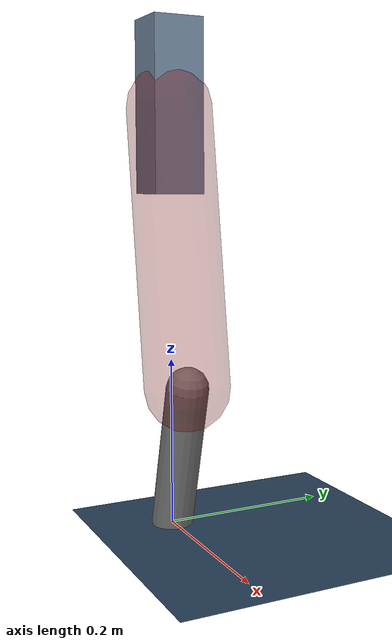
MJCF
<mujoco model="Hopper2D">
	<compiler inertiafromgeom="true" angle="radian" />
	<option timestep="0.001" integrator="implicit" cone="elliptic" solver="Newton" tolerance="1e-10" />

	<default>
		<geom contype="1" conaffinity="1" condim="3" friction="2 0.005 0.0001" solref="0.005 1" />
		<joint limited="true" damping="0.1" />
	</default>

	<asset>
		<texture name="skybox" type="skybox" builtin="gradient" rgb1=".4 .6 .8" rgb2="0 0 0" width="800" height="800" />
		<texture name="grid" type="2d" builtin="checker" rgb1=".1 .2 .3" rgb2=".2 .3 .4" width="300" height="300" mark="edge" markrgb=".2 .3 .4" />
		<material name="ground" texture="grid" texrepeat="1 1" texuniform="true" reflectance="0.1" />
		<material name="leg" rgba="0.5 0.6 0.7 1" />
	</asset>

	<worldbody>

		<geom name="floor" type="plane" size="5 5 0.25" material="ground" />

		<light directional="false" diffuse="0.8 0.8 0.8" specular="0.3 0.3 0.3" pos="0 0 2" dir="0 0 -1" />
		<light mode="targetbodycom" target="base" directional="false" diffuse="0.8 0.8 0.8" specular="0.3 0.3 0.3" pos="0 0 2" dir="0 0 -1" />

		<camera name="fixed" pos="0 -2 1" xyaxes="1 0 0 0 0 1" />
		<camera name="tracking" mode="trackcom" pos="0 -3 1" />

		<body name="root" pos="0 0 0.49614799922417685">
			<joint name="slide_x" type="slide" axis="1 0 0" range="-100 100" />
			<joint name="slide_z" type="slide" axis="0 0 1" range="0 10" />

			<body name="base" pos="0 0 0">
				<geom name="torso" type="box" size="0.03 0.03 0.1" mass="2.085" material="leg" />

				<body name="link1" pos="0 0 0" euler="0 1.4235238042793343 0">
					<joint type="hinge" axis="0 -1 0" pos="0 0 0" name="hinge1" limited="true" range="-3.14 3.14" stiffness="0" damping="0.1" />
					<geom name="thigh" type="capsule" fromto="0 0 0 0.3260388199990574 0 0" size="0.05" rgba="0.5 0 0 0.3" mass="1.0599048139974552" />

					<body name="link2" pos="0.3260388199990574 0 0" euler="0 0.41613431330202144 0">
						<joint type="hinge" axis="0 -1 0" pos="0 0 0" name="hinge2" limited="true" range="-3.14 3.14" stiffness="0" damping="0.1" />
						<geom name="shank" type="capsule" fromto="0 0 0 0.1801091792251195 0 0" size="0.025" mass="0.38399826130260756" />

					</body>
				</body>
			</body>
		</body>
	</worldbody>

	<actuator>
		<motor name="torque1" joint="hinge1" ctrlrange="-50.003291598059775 50.003291598059775" ctrllimited="true" gear="1" />
		<motor name="torque2" joint="hinge2" ctrlrange="-117.289480355731 117.289480355731" ctrllimited="true" gear="1" />
	</actuator>
</mujoco>
